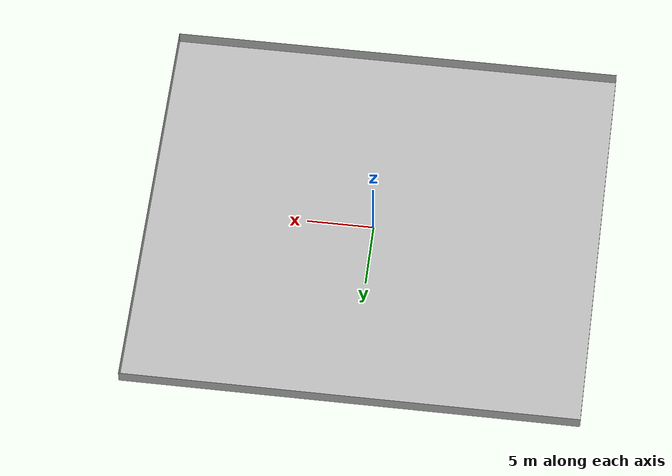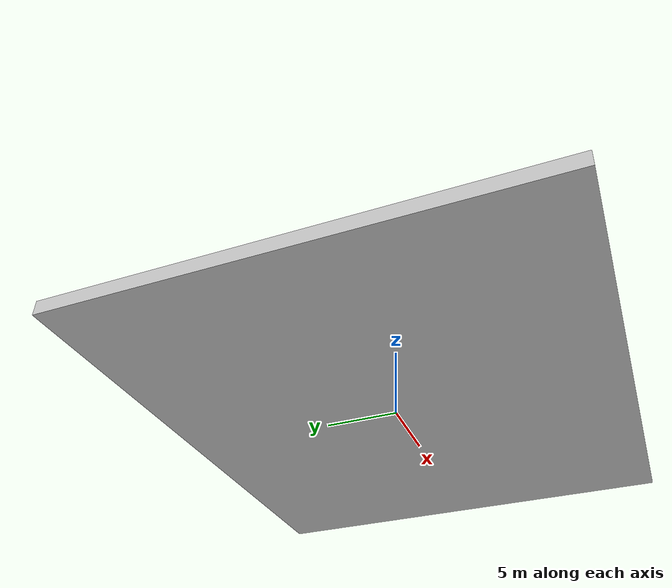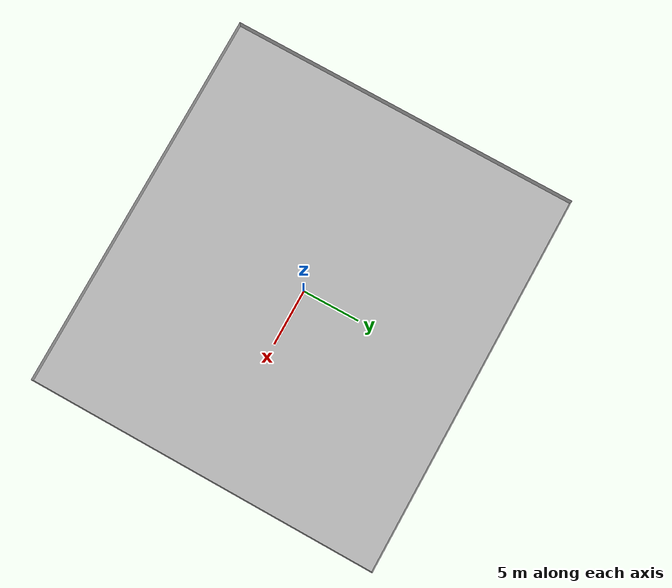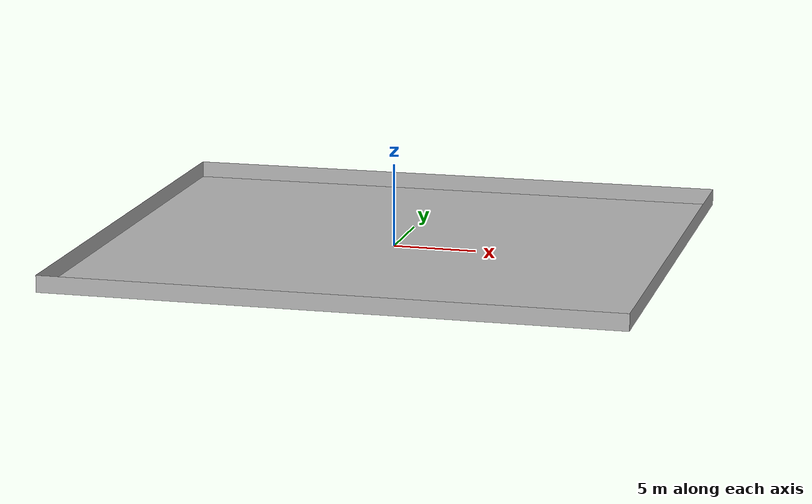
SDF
<?xml version='1.0' encoding='utf-8'?>
<sdf version="1.4">
<model name="template_model">
<link name="track">
<collision name="collision">
<pose>0 0 0 0 0 0</pose>
<geometry>
<mesh>
<uri>model://meshes/red_star_pro/red_star_pro_collision.dae</uri>
</mesh>
</geometry>
</collision>
<visual name="visual">
<pose>0 0 0 0 0 0</pose>
<geometry>
<mesh>
<uri>model://meshes/red_star_pro/red_star_pro.dae</uri>
</mesh>
</geometry>
</visual>
</link>
<static>1</static>
</model>
</sdf>
